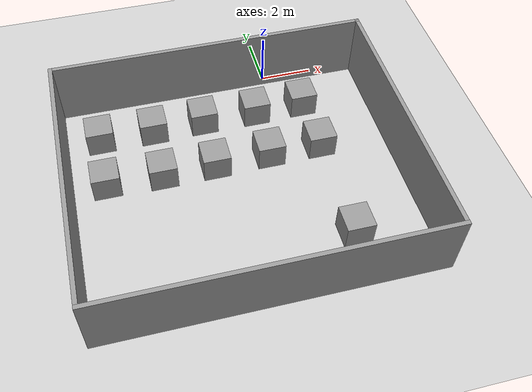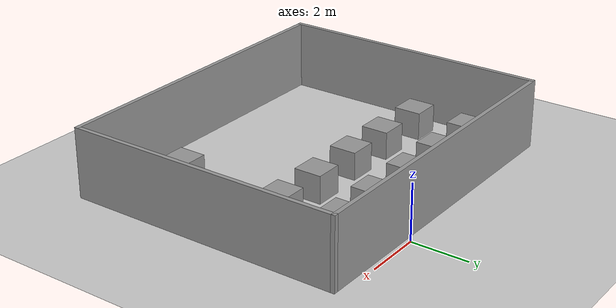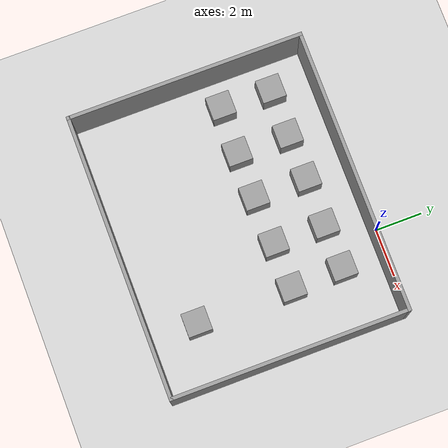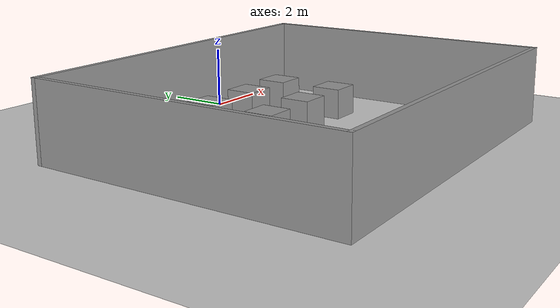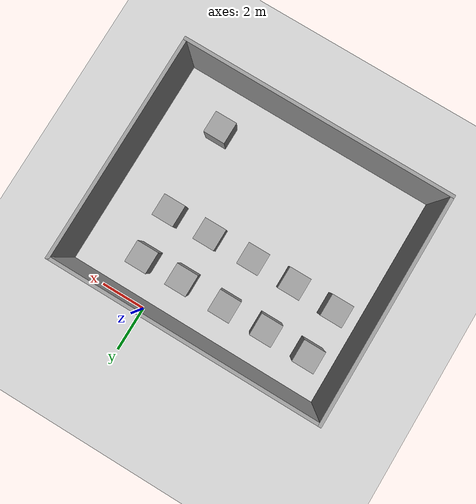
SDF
<sdf version="1.7">
 <world name="default">
  <light name="sun" type="directional">
   <pose>0 0 10 0 -0 0</pose>
   <diffuse>0.8 0.8 0.8 1</diffuse>
   <specular>0.2 0.2 0.2 1</specular>
   <attenuation>
    <range>1000</range>
    <constant>0.9</constant>
    <linear>0.01</linear>
    <quadratic>0.001</quadratic>
   </attenuation>
   <direction>-0.5 0.1 -0.9</direction>
   <spot><inner_angle>0</inner_angle><outer_angle>0</outer_angle><falloff>0</falloff></spot>
  </light>
  <model name="ground_plane">
   <static>1</static>
   <link name="link">
    <collision name="collision">
     <geometry><plane><normal>0 0 1</normal><size>100 100</size></plane></geometry>
     <surface>
      <contact><collide_bitmask>65535</collide_bitmask></contact>
      <friction><ode><mu>100</mu><mu2>50</mu2></ode></friction>
     </surface>
    </collision>
    <visual name="visual">
     <cast_shadows>0</cast_shadows>
     <geometry><plane><normal>0 0 1</normal><size>100 100</size></plane></geometry>
     <material>
      <script><uri>file://media/materials/scripts/gazebo.material</uri><name>Gazebo/Grey</name></script>
     </material>
    </visual>
   </link>
  </model>
  <gravity>0 0 -9.8</gravity>
  <magnetic_field>6e-06 2.3e-05 -4.2e-05</magnetic_field>
  <atmosphere type="adiabatic"/>
  <physics type="ode">
   <max_step_size>0.001</max_step_size>
   <real_time_factor>1</real_time_factor>
   <real_time_update_rate>1000</real_time_update_rate>
  </physics>
  <scene><ambient>0.4 0.4 0.4 1</ambient><background>0.7 0.7 0.7 1</background><shadows>1</shadows></scene>
  <spherical_coordinates>
   <surface_model>EARTH_WGS84</surface_model>
   <latitude_deg>0</latitude_deg>
   <longitude_deg>0</longitude_deg>
   <elevation>0</elevation>
   <heading_deg>0</heading_deg>
  </spherical_coordinates>
  <model name="ParedesRestaurante">
   <pose>-2.22481 -5.09014 0 0 -0 0</pose>
   <link name="Wall_20">
    <collision name="Wall_20_Collision">
     <geometry><box><size>12 0.15 2.5</size></box></geometry>
     <pose>0 0 1.25 0 -0 0</pose>
    </collision>
    <visual name="Wall_20_Visual">
     <pose>0 0 1.25 0 -0 0</pose>
     <geometry><box><size>12 0.15 2.5</size></box></geometry>
     <material>
      <script><uri>file://media/materials/scripts/gazebo.material</uri><name>Gazebo/Grey</name></script>
      <ambient>1 1 1 1</ambient>
     </material>
     <meta><layer>0</layer></meta>
    </visual>
    <pose>0 -5.01514 0 0 -0 0</pose>
   </link>
   <link name="Wall_21">
    <collision name="Wall_21_Collision">
     <geometry><box><size>10 0.15 2.5</size></box></geometry>
     <pose>0 0 1.25 0 -0 0</pose>
    </collision>
    <visual name="Wall_21_Visual">
     <pose>0 0 1.25 0 -0 0</pose>
     <geometry><box><size>10 0.15 2.5</size></box></geometry>
     <material>
      <script><uri>file://media/materials/scripts/gazebo.material</uri><name>Gazebo/Grey</name></script>
      <ambient>1 1 1 1</ambient>
     </material>
     <meta><layer>0</layer></meta>
    </visual>
    <pose>5.925 -0.090138 0 0 -0 1.5708</pose>
   </link>
   <link name="Wall_22">
    <collision name="Wall_22_Collision">
     <geometry><box><size>12 0.15 2.5</size></box></geometry>
     <pose>0 0 1.25 0 -0 0</pose>
    </collision>
    <visual name="Wall_22_Visual">
     <pose>0 0 1.25 0 -0 0</pose>
     <geometry><box><size>12 0.15 2.5</size></box></geometry>
     <material>
      <script><uri>file://media/materials/scripts/gazebo.material</uri><name>Gazebo/Grey</name></script>
      <ambient>1 1 1 1</ambient>
     </material>
     <meta><layer>0</layer></meta>
    </visual>
    <pose>0 4.83486 0 0 -0 3.14159</pose>
   </link>
   <link name="Wall_23">
    <collision name="Wall_23_Collision">
     <geometry><box><size>10 0.15 2.5</size></box></geometry>
     <pose>0 0 1.25 0 -0 0</pose>
    </collision>
    <visual name="Wall_23_Visual">
     <pose>0 0 1.25 0 -0 0</pose>
     <geometry><box><size>10 0.15 2.5</size></box></geometry>
     <material>
      <script><uri>file://media/materials/scripts/gazebo.material</uri><name>Gazebo/Grey</name></script>
      <ambient>1 1 1 1</ambient>
     </material>
     <meta><layer>0</layer></meta>
    </visual>
    <pose>-5.925 -0.090138 0 0 -0 -1.5708</pose>
   </link>
   <static>1</static>
  </model>
  <model name="unit_box">
   <pose>-6.83859 -1.99582 0.499995 0 1e-05 0</pose>
   <link name="link">
    <inertial>
     <mass>1</mass>
     <inertia>
      <ixx>0.166667</ixx>
      <ixy>0</ixy>
      <ixz>0</ixz>
      <iyy>0.166667</iyy>
      <iyz>0</iyz>
      <izz>0.166667</izz>
     </inertia>
    </inertial>
    <collision name="collision"><geometry><box><size>1 1 1</size></box></geometry></collision>
    <visual name="visual">
     <geometry><box><size>1 1 1</size></box></geometry>
     <material>
      <script><name>Gazebo/Grey</name><uri>file://media/materials/scripts/gazebo.material</uri></script>
     </material>
    </visual>
   </link>
  </model>
  <model name="unit_box_0">
   <pose>-4.84112 -2.00954 0.499995 -1e-05 -0 -0</pose>
   <link name="link">
    <inertial>
     <mass>1</mass>
     <inertia>
      <ixx>0.166667</ixx>
      <ixy>0</ixy>
      <ixz>0</ixz>
      <iyy>0.166667</iyy>
      <iyz>0</iyz>
      <izz>0.166667</izz>
     </inertia>
    </inertial>
    <collision name="collision"><geometry><box><size>1 1 1</size></box></geometry></collision>
    <visual name="visual">
     <geometry><box><size>1 1 1</size></box></geometry>
     <material>
      <script><name>Gazebo/Grey</name><uri>file://media/materials/scripts/gazebo.material</uri></script>
     </material>
    </visual>
   </link>
  </model>
  <model name="unit_box_1">
   <pose>-2.90394 -1.95964 0.499995 0 1e-05 0</pose>
   <link name="link">
    <inertial>
     <mass>1</mass>
     <inertia>
      <ixx>0.166667</ixx>
      <ixy>0</ixy>
      <ixz>0</ixz>
      <iyy>0.166667</iyy>
      <iyz>0</iyz>
      <izz>0.166667</izz>
     </inertia>
    </inertial>
    <collision name="collision"><geometry><box><size>1 1 1</size></box></geometry></collision>
    <visual name="visual">
     <geometry><box><size>1 1 1</size></box></geometry>
     <material>
      <script><name>Gazebo/Grey</name><uri>file://media/materials/scripts/gazebo.material</uri></script>
     </material>
    </visual>
   </link>
  </model>
  <model name="unit_box_2">
   <pose>-0.860039 -1.96304 0.499995 -1e-05 -0 -0</pose>
   <link name="link">
    <inertial>
     <mass>1</mass>
     <inertia>
      <ixx>0.166667</ixx>
      <ixy>0</ixy>
      <ixz>0</ixz>
      <iyy>0.166667</iyy>
      <iyz>0</iyz>
      <izz>0.166667</izz>
     </inertia>
    </inertial>
    <collision name="collision"><geometry><box><size>1 1 1</size></box></geometry></collision>
    <visual name="visual">
     <geometry><box><size>1 1 1</size></box></geometry>
     <material>
      <script><name>Gazebo/Grey</name><uri>file://media/materials/scripts/gazebo.material</uri></script>
     </material>
    </visual>
   </link>
  </model>
  <model name="unit_box_3">
   <pose>1.0093 -1.91293 0.499995 0 1e-05 0</pose>
   <link name="link">
    <inertial>
     <mass>1</mass>
     <inertia>
      <ixx>0.166667</ixx>
      <ixy>0</ixy>
      <ixz>0</ixz>
      <iyy>0.166667</iyy>
      <iyz>0</iyz>
      <izz>0.166667</izz>
     </inertia>
    </inertial>
    <collision name="collision"><geometry><box><size>1 1 1</size></box></geometry></collision>
    <visual name="visual">
     <geometry><box><size>1 1 1</size></box></geometry>
     <material>
      <script><name>Gazebo/Grey</name><uri>file://media/materials/scripts/gazebo.material</uri></script>
     </material>
    </visual>
   </link>
  </model>
  <model name="unit_box_4">
   <pose>-6.88699 -4.14637 0.499995 -1e-05 -0 -0</pose>
   <link name="link">
    <inertial>
     <mass>1</mass>
     <inertia>
      <ixx>0.166667</ixx>
      <ixy>0</ixy>
      <ixz>0</ixz>
      <iyy>0.166667</iyy>
      <iyz>0</iyz>
      <izz>0.166667</izz>
     </inertia>
    </inertial>
    <collision name="collision"><geometry><box><size>1 1 1</size></box></geometry></collision>
    <visual name="visual">
     <geometry><box><size>1 1 1</size></box></geometry>
     <material>
      <script><name>Gazebo/Grey</name><uri>file://media/materials/scripts/gazebo.material</uri></script>
     </material>
    </visual>
   </link>
  </model>
  <model name="unit_box_5">
   <pose>-4.85576 -4.20327 0.499995 0 1e-05 0</pose>
   <link name="link">
    <inertial>
     <mass>1</mass>
     <inertia>
      <ixx>0.166667</ixx>
      <ixy>0</ixy>
      <ixz>0</ixz>
      <iyy>0.166667</iyy>
      <iyz>0</iyz>
      <izz>0.166667</izz>
     </inertia>
    </inertial>
    <collision name="collision"><geometry><box><size>1 1 1</size></box></geometry></collision>
    <visual name="visual">
     <geometry><box><size>1 1 1</size></box></geometry>
     <material>
      <script><name>Gazebo/Grey</name><uri>file://media/materials/scripts/gazebo.material</uri></script>
     </material>
    </visual>
   </link>
  </model>
  <model name="unit_box_6">
   <pose>-2.91395 -4.1921 0.499995 -1e-05 -0 -0</pose>
   <link name="link">
    <inertial>
     <mass>1</mass>
     <inertia>
      <ixx>0.166667</ixx>
      <ixy>0</ixy>
      <ixz>0</ixz>
      <iyy>0.166667</iyy>
      <iyz>0</iyz>
      <izz>0.166667</izz>
     </inertia>
    </inertial>
    <collision name="collision"><geometry><box><size>1 1 1</size></box></geometry></collision>
    <visual name="visual">
     <geometry><box><size>1 1 1</size></box></geometry>
     <material>
      <script><name>Gazebo/Grey</name><uri>file://media/materials/scripts/gazebo.material</uri></script>
     </material>
    </visual>
   </link>
  </model>
  <model name="unit_box_7">
   <pose>-0.867917 -4.13315 0.499995 0 1e-05 0</pose>
   <link name="link">
    <inertial>
     <mass>1</mass>
     <inertia>
      <ixx>0.166667</ixx>
      <ixy>0</ixy>
      <ixz>0</ixz>
      <iyy>0.166667</iyy>
      <iyz>0</iyz>
      <izz>0.166667</izz>
     </inertia>
    </inertial>
    <collision name="collision"><geometry><box><size>1 1 1</size></box></geometry></collision>
    <visual name="visual">
     <geometry><box><size>1 1 1</size></box></geometry>
     <material>
      <script><name>Gazebo/Grey</name><uri>file://media/materials/scripts/gazebo.material</uri></script>
     </material>
    </visual>
   </link>
  </model>
  <model name="unit_box_8">
   <pose>1.07293 -4.10529 0.499995 -1e-05 -0 0</pose>
   <link name="link">
    <inertial>
     <mass>1</mass>
     <inertia>
      <ixx>0.166667</ixx>
      <ixy>0</ixy>
      <ixz>0</ixz>
      <iyy>0.166667</iyy>
      <iyz>0</iyz>
      <izz>0.166667</izz>
     </inertia>
    </inertial>
    <collision name="collision"><geometry><box><size>1 1 1</size></box></geometry></collision>
    <visual name="visual">
     <geometry><box><size>1 1 1</size></box></geometry>
     <material>
      <script><name>Gazebo/Grey</name><uri>file://media/materials/scripts/gazebo.material</uri></script>
     </material>
    </visual>
   </link>
  </model>
  <model name="unit_box_9">
   <pose>1.06546 -8.13286 0.5 0 -0 0</pose>
   <link name="link">
    <inertial>
     <mass>1</mass>
     <inertia>
      <ixx>0.166667</ixx>
      <ixy>0</ixy>
      <ixz>0</ixz>
      <iyy>0.166667</iyy>
      <iyz>0</iyz>
      <izz>0.166667</izz>
     </inertia>
    </inertial>
    <collision name="collision"><geometry><box><size>1 1 1</size></box></geometry></collision>
    <visual name="visual">
     <geometry><box><size>1 1 1</size></box></geometry>
     <material>
      <script><name>Gazebo/Grey</name><uri>file://media/materials/scripts/gazebo.material</uri></script>
     </material>
    </visual>
   </link>
  </model>
 </world>
</sdf>
